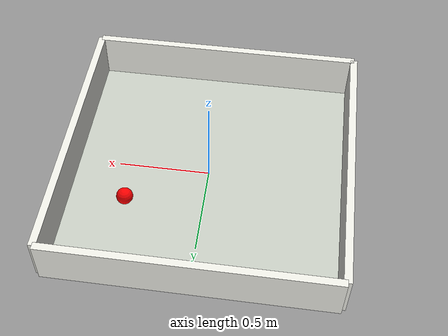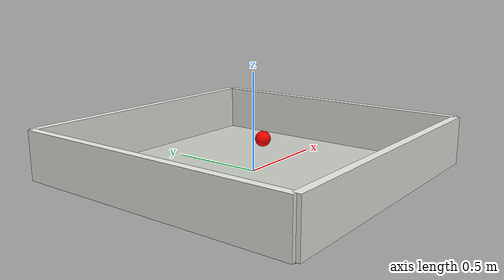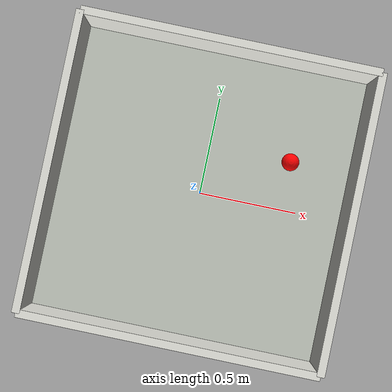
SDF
<?xml version="1.0"?>
<sdf version="1.6">
  <world name="room_1_5m">
    <plugin filename="gz-sim-physics-system" name="gz::sim::systems::Physics"/>
    <plugin filename="gz-sim-contact-system" name="gz::sim::systems::Contact"/>
    <plugin filename="gz-sim-user-commands-system" name="gz::sim::systems::UserCommands"/>
    <plugin filename="gz-sim-scene-broadcaster-system" name="gz::sim::systems::SceneBroadcaster"/>
    <plugin filename="gz-sim-sensors-system" name="gz::sim::systems::Sensors">
      <render_engine>ogre2</render_engine>
    </plugin>

    <gravity>0 0 -9.81</gravity>
    <magnetic_field>6e-06 2.3e-05 -4.2e-05</magnetic_field>
    <atmosphere type="adiabatic"/>

    <scene>
      <ambient>0.4 0.4 0.4 1</ambient>
      <background>0.72 0.78 0.84 1</background>
      <shadows>true</shadows>
    </scene>

    <light name="ceiling_light" type="point">
      <pose>0 0 1.2 0 0 0</pose>
      <diffuse>0.9 0.9 0.85 1</diffuse>
      <specular>0.2 0.2 0.2 1</specular>
      <attenuation>
        <range>4</range>
        <constant>0.8</constant>
        <linear>0.05</linear>
        <quadratic>0.01</quadratic>
      </attenuation>
      <cast_shadows>true</cast_shadows>
    </light>

    <model name="floor">
      <static>true</static>
      <pose>0 0 -0.0025 0 0 0</pose>
      <link name="floor_link">
        <collision name="floor_collision">
          <geometry>
            <box>
              <size>1.5 1.5 0.005</size>
            </box>
          </geometry>
        </collision>
        <visual name="floor_visual">
          <geometry>
            <box>
              <size>1.5 1.5 0.005</size>
            </box>
          </geometry>
          <material>
            <ambient>0.78 0.80 0.76 1</ambient>
            <diffuse>0.78 0.80 0.76 1</diffuse>
          </material>
        </visual>
      </link>
    </model>

    <model name="north_wall">
      <static>true</static>
      <pose>0 0.75 0.125 0 0 0</pose>
      <link name="link">
        <collision name="collision">
          <geometry>
            <box>
              <size>1.5 0.04 0.25</size>
            </box>
          </geometry>
        </collision>
        <visual name="visual">
          <geometry>
            <box>
              <size>1.5 0.04 0.25</size>
            </box>
          </geometry>
          <material>
            <ambient>0.93 0.93 0.90 1</ambient>
            <diffuse>0.93 0.93 0.90 1</diffuse>
          </material>
        </visual>
      </link>
    </model>

    <model name="south_wall">
      <static>true</static>
      <pose>0 -0.75 0.125 0 0 0</pose>
      <link name="link">
        <collision name="collision">
          <geometry>
            <box>
              <size>1.5 0.04 0.25</size>
            </box>
          </geometry>
        </collision>
        <visual name="visual">
          <geometry>
            <box>
              <size>1.5 0.04 0.25</size>
            </box>
          </geometry>
          <material>
            <ambient>0.93 0.93 0.90 1</ambient>
            <diffuse>0.93 0.93 0.90 1</diffuse>
          </material>
        </visual>
      </link>
    </model>

    <model name="east_wall">
      <static>true</static>
      <pose>0.75 0 0.125 0 0 0</pose>
      <link name="link">
        <collision name="collision">
          <geometry>
            <box>
              <size>0.04 1.5 0.25</size>
            </box>
          </geometry>
        </collision>
        <visual name="visual">
          <geometry>
            <box>
              <size>0.04 1.5 0.25</size>
            </box>
          </geometry>
          <material>
            <ambient>0.93 0.93 0.90 1</ambient>
            <diffuse>0.93 0.93 0.90 1</diffuse>
          </material>
        </visual>
      </link>
    </model>

    <model name="west_wall">
      <static>true</static>
      <pose>-0.75 0 0.125 0 0 0</pose>
      <link name="link">
        <collision name="collision">
          <geometry>
            <box>
              <size>0.04 1.5 0.25</size>
            </box>
          </geometry>
        </collision>
        <visual name="visual">
          <geometry>
            <box>
              <size>0.04 1.5 0.25</size>
            </box>
          </geometry>
          <material>
            <ambient>0.93 0.93 0.90 1</ambient>
            <diffuse>0.93 0.93 0.90 1</diffuse>
          </material>
        </visual>
      </link>
    </model>

    <model name="red_sphere">
      <static>true</static>
      <pose>0.42 0.25 0.045 0 0 0</pose>
      <link name="link">
        <visual name="visual">
          <geometry>
            <sphere>
              <radius>0.045</radius>
            </sphere>
          </geometry>
          <material>
            <ambient>1 0 0 1</ambient>
            <diffuse>1 0 0 1</diffuse>
            <specular>0.4 0.1 0.1 1</specular>
          </material>
        </visual>
      </link>
    </model>
  </world>
</sdf>
